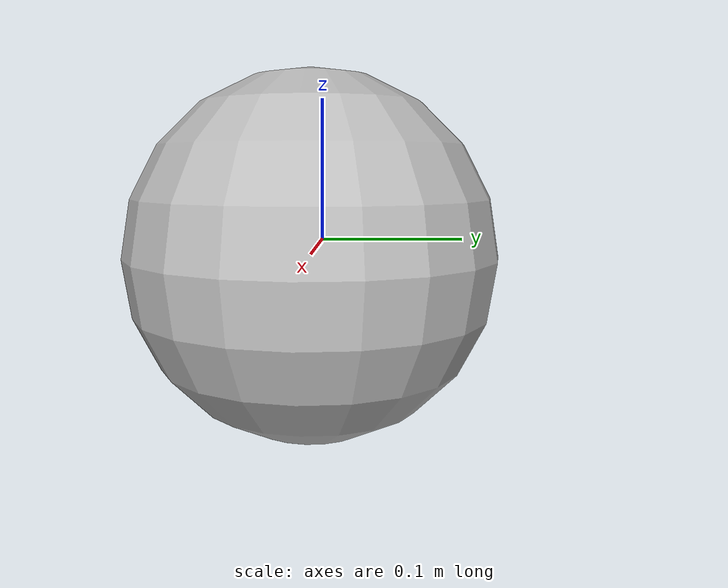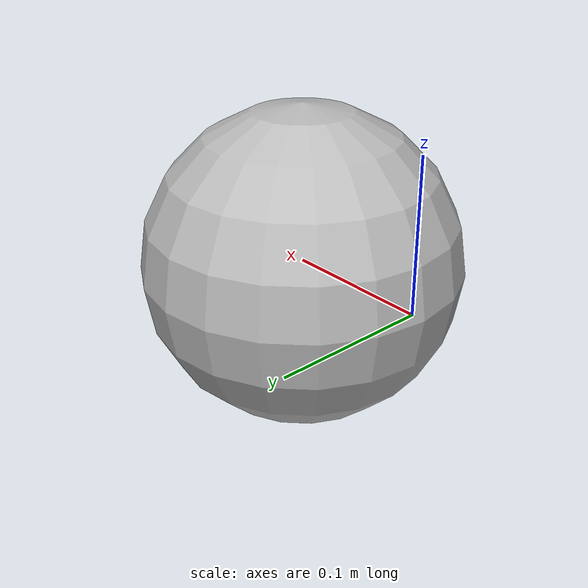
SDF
<?xml version='1.0'?>
<sdf version='1.4'>
  <model name="ball">
    <static>false</static>
    <link name='link'>
      <pose>.1 0 0 0 0 0</pose>

      <collision name='collision'>
        <geometry>
          <sphere>
               <radius>.11</radius>
          </sphere>
        </geometry>
      </collision>

      <visual name='visual'>
        <geometry>
          <sphere>
               <radius>.11</radius>
          </sphere>
        </geometry>
      </visual>

	</link>
  </model>
</sdf>
